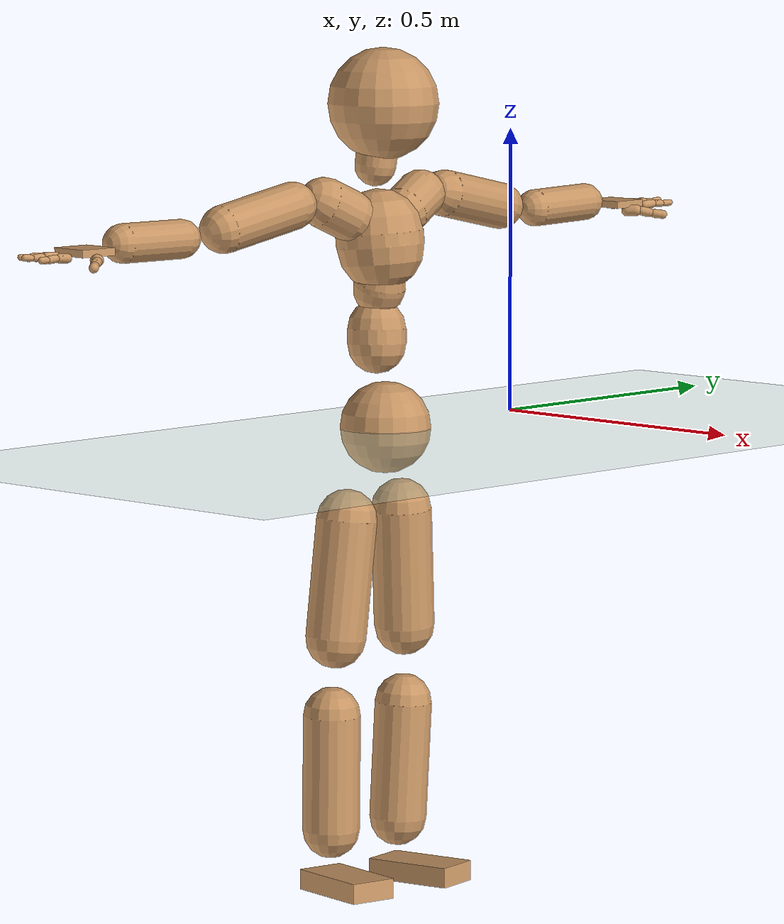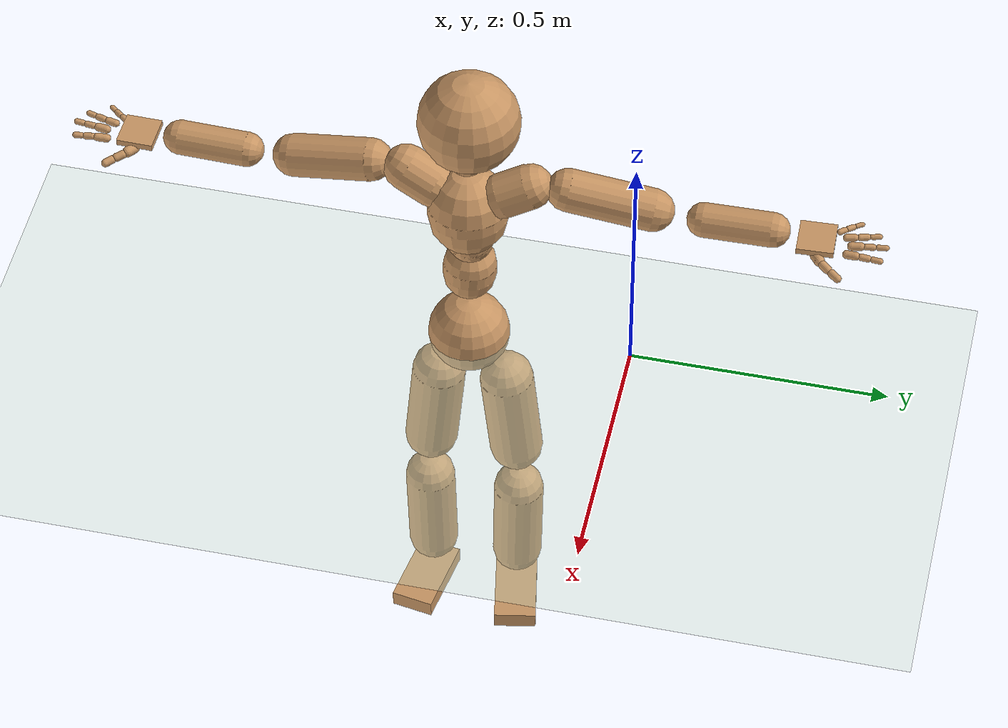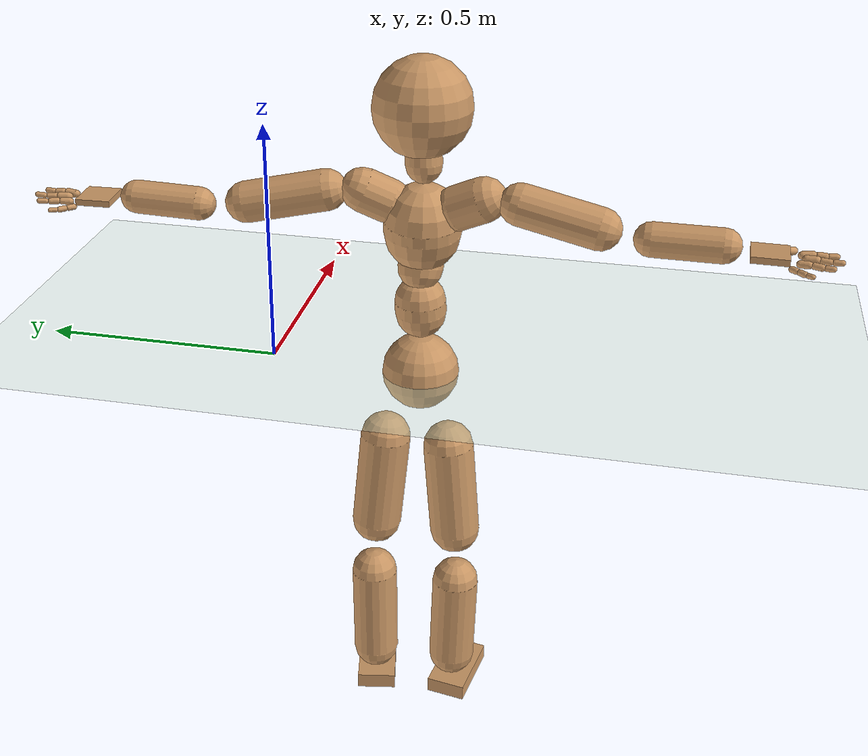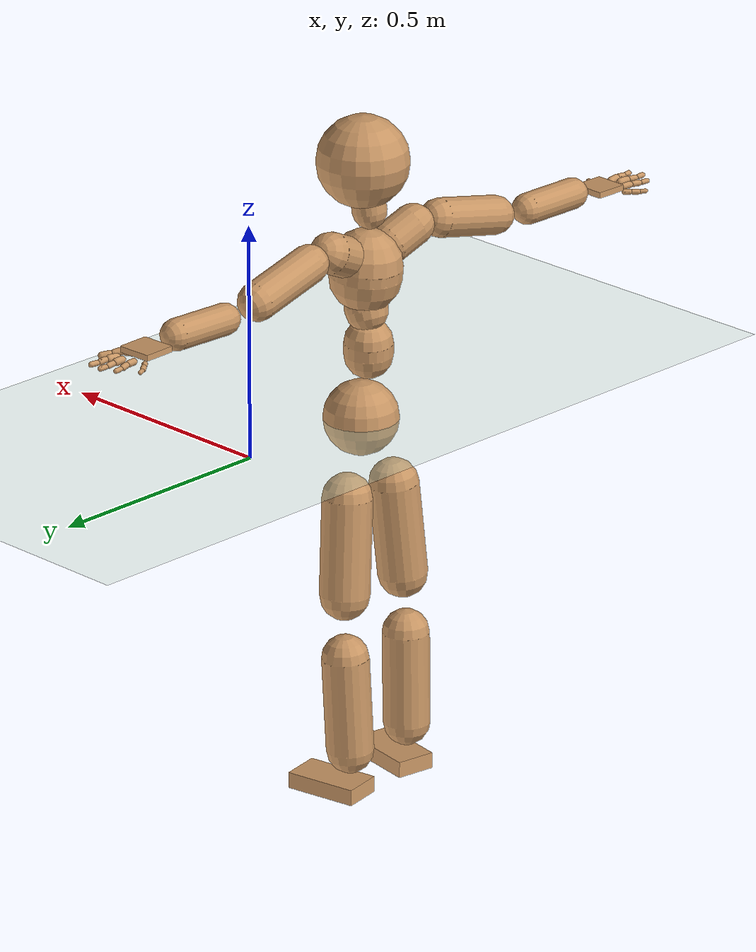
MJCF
<mujoco model="humanoid">
  <compiler coordinate="local" angle="radian"/>
  <default>
    <joint damping="0.0" armature="0.01" stiffness="0.0" limited="true"/>
    <geom conaffinity="1" condim="3" contype="7" margin="0.001" rgba="0.8 0.6 .4 1"/>
  </default>
  <asset>
    <texture type="skybox" builtin="gradient" rgb1=".4 .5 .6" rgb2="0 0 0" width="100" height="100"/>
    <texture builtin="flat" height="1278" mark="cross" markrgb="1 1 1" name="texgeom" random="0.01" rgb1="0.8 0.6 0.4" rgb2="0.8 0.6 0.4" type="cube" width="127"/>
    <texture builtin="checker" height="100" name="texplane" rgb1="0 0 0" rgb2="0.8 0.8 0.8" type="2d" width="100"/>
    <material name="MatPlane" reflectance="0.5" shininess="1" specular="1" texrepeat="60 60" texture="texplane"/>
    <material name="geom" texture="texgeom" texuniform="true"/>
  </asset>
  <worldbody>
    <light cutoff="100" diffuse="1 1 1" dir="-0 0 -1.3" directional="true" exponent="1" pos="0 0 1.3" specular=".1 .1 .1"/>
    <geom conaffinity="1" condim="3" name="floor" pos="0 0 0" rgba="0.8 0.9 0.8 1" size="100 100 .2" type="plane" material="MatPlane"/>
    <body name="Pelvis" pos="0.0004 -0.3167 -0.0005">
      <freejoint name="Pelvis"/>
      <geom type="sphere" contype="1" conaffinity="1" density="500" size="0.0797" pos="0.0000 0.0000 0.0000" name="Pelvis"/>
      <body name="L_Hip" pos="-0.0244 0.0621 -0.0818">
        <joint name="L_Hip_x" type="hinge" pos="0 0 0" axis="1 0 0" stiffness="800" damping="80" armature="0.02" range="-180.0000 180.0000"/>
        <joint name="L_Hip_y" type="hinge" pos="0 0 0" axis="0 1 0" stiffness="800" damping="80" armature="0.02" range="-180.0000 180.0000"/>
        <joint name="L_Hip_z" type="hinge" pos="0 0 0" axis="0 0 1" stiffness="800" damping="80" armature="0.02" range="-180.0000 180.0000"/>
        <geom type="capsule" contype="1" conaffinity="1" density="500" fromto="-0.0034 0.0059 -0.0696 -0.0134 0.0236 -0.2783" size="0.053" name="L_Hip"/>
        <body name="L_Knee" pos="-0.0168 0.0295 -0.3479">
          <joint name="L_Knee_x" type="hinge" pos="0 0 0" axis="1 0 0" stiffness="800" damping="80" armature="0.02" range="-180.0000 180.0000"/>
          <joint name="L_Knee_y" type="hinge" pos="0 0 0" axis="0 1 0" stiffness="800" damping="80" armature="0.02" range="-180.0000 180.0000"/>
          <joint name="L_Knee_z" type="hinge" pos="0 0 0" axis="0 0 1" stiffness="800" damping="80" armature="0.02" range="-180.0000 180.0000"/>
          <geom type="capsule" contype="1" conaffinity="1" density="500" fromto="-0.0028 -0.0017 -0.0689 -0.0114 -0.0067 -0.2756" size="0.0501" name="L_Knee"/>
          <body name="L_Ankle" pos="-0.0142 -0.0084 -0.3444">
            <joint name="L_Ankle_x" type="hinge" pos="0 0 0" axis="1 0 0" stiffness="800" damping="80" armature="0.02" range="-180.0000 180.0000"/>
            <joint name="L_Ankle_y" type="hinge" pos="0 0 0" axis="0 1 0" stiffness="800" damping="80" armature="0.02" range="-180.0000 180.0000"/>
            <joint name="L_Ankle_z" type="hinge" pos="0 0 0" axis="0 0 1" stiffness="800" damping="80" armature="0.02" range="-180.0000 180.0000"/>
            <geom type="box" contype="1" conaffinity="1" density="500" pos="0.0500 0.0093 -0.0200" size="0.0791 0.0425 0.0176" quat="0.9958 0.0000 0.0000 0.0920" name="L_Ankle"/>
            <body name="L_Toe" pos="0.1 0.0186 -0.0401">
              <joint name="L_Toe_x" type="hinge" pos="0 0 0" axis="1 0 0" stiffness="500" damping="50" armature="0.02" range="-180.0000 180.0000"/>
              <joint name="L_Toe_y" type="hinge" pos="0 0 0" axis="0 1 0" stiffness="500" damping="50" armature="0.02" range="-180.0000 180.0000"/>
              <joint name="L_Toe_z" type="hinge" pos="0 0 0" axis="0 0 1" stiffness="500" damping="50" armature="0.02" range="-180.0000 180.0000"/>
              <geom type="box" contype="1" conaffinity="1" density="500" pos="0.0000 0.0000 0.0216" size="0.0009 0.0021 0.001" quat="0.9950 0.0000 0.0000 0.0996" name="L_Toe"/>
            </body>
          </body>
        </body>
      </body>
      <body name="R_Hip" pos="-0.0254 -0.061 -0.0886">
        <joint name="R_Hip_x" type="hinge" pos="0 0 0" axis="1 0 0" stiffness="800" damping="80" armature="0.02" range="-180.0000 180.0000"/>
        <joint name="R_Hip_y" type="hinge" pos="0 0 0" axis="0 1 0" stiffness="800" damping="80" armature="0.02" range="-180.0000 180.0000"/>
        <joint name="R_Hip_z" type="hinge" pos="0 0 0" axis="0 0 1" stiffness="800" damping="80" armature="0.02" range="-180.0000 180.0000"/>
        <geom type="capsule" contype="1" conaffinity="1" density="500" fromto="-0.0023 -0.0066 -0.0686 -0.0094 -0.0266 -0.2744" size="0.053" name="R_Hip"/>
        <body name="R_Knee" pos="-0.0117 -0.0332 -0.3431">
          <joint name="R_Knee_x" type="hinge" pos="0 0 0" axis="1 0 0" stiffness="800" damping="80" armature="0.02" range="-180.0000 180.0000"/>
          <joint name="R_Knee_y" type="hinge" pos="0 0 0" axis="0 1 0" stiffness="800" damping="80" armature="0.02" range="-180.0000 180.0000"/>
          <joint name="R_Knee_z" type="hinge" pos="0 0 0" axis="0 0 1" stiffness="800" damping="80" armature="0.02" range="-180.0000 180.0000"/>
          <geom type="capsule" contype="1" conaffinity="1" density="500" fromto="-0.0020 0.0010 -0.0673 -0.0079 0.0038 -0.2692" size="0.0501" name="R_Knee"/>
          <body name="R_Ankle" pos="-0.0099 0.0048 -0.3365">
            <joint name="R_Ankle_x" type="hinge" pos="0 0 0" axis="1 0 0" stiffness="800" damping="80" armature="0.02" range="-180.0000 180.0000"/>
            <joint name="R_Ankle_y" type="hinge" pos="0 0 0" axis="0 1 0" stiffness="800" damping="80" armature="0.02" range="-180.0000 180.0000"/>
            <joint name="R_Ankle_z" type="hinge" pos="0 0 0" axis="0 0 1" stiffness="800" damping="80" armature="0.02" range="-180.0000 180.0000"/>
            <geom type="box" contype="1" conaffinity="1" density="500" pos="0.0467 -0.0077 -0.0220" size="0.0791 0.0425 0.0176" quat="0.9967 0.0000 0.0000 -0.0812" name="R_Ankle"/>
            <body name="R_Toe" pos="0.0933 -0.0153 -0.0439">
              <joint name="R_Toe_x" type="hinge" pos="0 0 0" axis="1 0 0" stiffness="500" damping="50" armature="0.02" range="-180.0000 180.0000"/>
              <joint name="R_Toe_y" type="hinge" pos="0 0 0" axis="0 1 0" stiffness="500" damping="50" armature="0.02" range="-180.0000 180.0000"/>
              <joint name="R_Toe_z" type="hinge" pos="0 0 0" axis="0 0 1" stiffness="500" damping="50" armature="0.02" range="-180.0000 180.0000"/>
              <geom type="box" contype="1" conaffinity="1" density="500" pos="0.0000 0.0000 0.0235" size="0.0009 0.0021 0.001" quat="0.9976 0.0000 0.0000 -0.0693" name="R_Toe"/>
            </body>
          </body>
        </body>
      </body>
      <body name="Torso" pos="-0.0165 -0.0042 0.0919">
        <joint name="Torso_x" type="hinge" pos="0 0 0" axis="1 0 0" stiffness="1000" damping="100" armature="0.02" range="-180.0000 180.0000"/>
        <joint name="Torso_y" type="hinge" pos="0 0 0" axis="0 1 0" stiffness="1000" damping="100" armature="0.02" range="-180.0000 180.0000"/>
        <joint name="Torso_z" type="hinge" pos="0 0 0" axis="0 0 1" stiffness="1000" damping="100" armature="0.02" range="-180.0000 180.0000"/>
        <geom type="capsule" contype="1" conaffinity="1" density="500" fromto="-0.0035 0.0030 0.0775 -0.0023 0.0020 0.0516" size="0.0516" name="Torso"/>
        <body name="Spine" pos="-0.0058 0.005 0.1291">
          <joint name="Spine_x" type="hinge" pos="0 0 0" axis="1 0 0" stiffness="1000" damping="100" armature="0.02" range="-180.0000 180.0000"/>
          <joint name="Spine_y" type="hinge" pos="0 0 0" axis="0 1 0" stiffness="1000" damping="100" armature="0.02" range="-180.0000 180.0000"/>
          <joint name="Spine_z" type="hinge" pos="0 0 0" axis="0 0 1" stiffness="1000" damping="100" armature="0.02" range="-180.0000 180.0000"/>
          <geom type="capsule" contype="1" conaffinity="1" density="500" fromto="0.0096 -0.0009 0.0273 0.0064 -0.0006 0.0182" size="0.0454" name="Spine"/>
          <body name="Chest" pos="0.016 -0.0014 0.0455">
            <joint name="Chest_x" type="hinge" pos="0 0 0" axis="1 0 0" stiffness="1000" damping="100" armature="0.02" range="-180.0000 180.0000"/>
            <joint name="Chest_y" type="hinge" pos="0 0 0" axis="0 1 0" stiffness="1000" damping="100" armature="0.02" range="-180.0000 180.0000"/>
            <joint name="Chest_z" type="hinge" pos="0 0 0" axis="0 0 1" stiffness="1000" damping="100" armature="0.02" range="-180.0000 180.0000"/>
            <geom type="capsule" contype="1" conaffinity="1" density="500" fromto="-0.0058 -0.0017 0.0697 -0.0038 -0.0011 0.0465" size="0.0768" name="Chest"/>
            <body name="Neck" pos="-0.0163 -0.0055 0.1591">
              <joint name="Neck_x" type="hinge" pos="0 0 0" axis="1 0 0" stiffness="500" damping="50" armature="0.02" range="-180.0000 180.0000"/>
              <joint name="Neck_y" type="hinge" pos="0 0 0" axis="0 1 0" stiffness="500" damping="50" armature="0.02" range="-180.0000 180.0000"/>
              <joint name="Neck_z" type="hinge" pos="0 0 0" axis="0 0 1" stiffness="500" damping="50" armature="0.02" range="-180.0000 180.0000"/>
              <geom type="capsule" contype="1" conaffinity="1" density="500" fromto="0.0031 0.0016 0.0267 0.0125 0.0066 0.1066" size="0.0361" name="Neck"/>
              <body name="Head" pos="0.0156 0.0082 0.1333">
                <joint name="Head_x" type="hinge" pos="0 0 0" axis="1 0 0" stiffness="500" damping="50" armature="0.02" range="-180.0000 180.0000"/>
                <joint name="Head_y" type="hinge" pos="0 0 0" axis="0 1 0" stiffness="500" damping="50" armature="0.02" range="-180.0000 180.0000"/>
                <joint name="Head_z" type="hinge" pos="0 0 0" axis="0 0 1" stiffness="500" damping="50" armature="0.02" range="-180.0000 180.0000"/>
                <geom type="sphere" contype="1" conaffinity="1" density="500" size="0.0968" pos="0.0000 0.0000 0.0000" name="Head"/>
              </body>
            </body>
            <body name="L_Thorax" pos="-0.0039 0.0453 0.0962">
              <joint name="L_Thorax_x" type="hinge" pos="0 0 0" axis="1 0 0" stiffness="500" damping="50" armature="0.02" range="-180.0000 180.0000"/>
              <joint name="L_Thorax_y" type="hinge" pos="0 0 0" axis="0 1 0" stiffness="500" damping="50" armature="0.02" range="-180.0000 180.0000"/>
              <joint name="L_Thorax_z" type="hinge" pos="0 0 0" axis="0 0 1" stiffness="500" damping="50" armature="0.02" range="-180.0000 180.0000"/>
              <geom type="capsule" contype="1" conaffinity="1" density="500" fromto="-0.0039 0.0172 0.0081 -0.0156 0.0687 0.0325" size="0.0434" name="L_Thorax"/>
              <body name="L_Shoulder" pos="-0.0195 0.0858 0.0406">
                <joint name="L_Shoulder_x" type="hinge" pos="0 0 0" axis="1 0 0" stiffness="500" damping="50" armature="0.02" range="-180.0000 180.0000"/>
                <joint name="L_Shoulder_y" type="hinge" pos="0 0 0" axis="0 1 0" stiffness="500" damping="50" armature="0.02" range="-180.0000 180.0000"/>
                <joint name="L_Shoulder_z" type="hinge" pos="0 0 0" axis="0 0 1" stiffness="500" damping="50" armature="0.02" range="-180.0000 180.0000"/>
                <geom type="capsule" contype="1" conaffinity="1" density="500" fromto="-0.0048 0.0529 -0.0110 -0.0194 0.2115 -0.0439" size="0.0411" name="L_Shoulder"/>
                <body name="L_Elbow" pos="-0.0242 0.2643 -0.0549">
                  <joint name="L_Elbow_x" type="hinge" pos="0 0 0" axis="1 0 0" stiffness="500" damping="50" armature="0.02" range="-720.0000 720.0000"/>
                  <joint name="L_Elbow_y" type="hinge" pos="0 0 0" axis="0 1 0" stiffness="500" damping="50" armature="0.02" range="-720.0000 720.0000"/>
                  <joint name="L_Elbow_z" type="hinge" pos="0 0 0" axis="0 0 1" stiffness="500" damping="50" armature="0.02" range="-720.0000 720.0000"/>
                  <geom type="capsule" contype="1" conaffinity="1" density="500" fromto="0.0004 0.0432 0.0011 0.0014 0.1730 0.0043" size="0.0332" name="L_Elbow"/>
                  <body name="L_Wrist" pos="0.0018 0.2162 0.0053">
                    <joint name="L_Wrist_x" type="hinge" pos="0 0 0" axis="1 0 0" stiffness="300" damping="30" armature="0.02" range="-180.0000 180.0000"/>
                    <joint name="L_Wrist_y" type="hinge" pos="0 0 0" axis="0 1 0" stiffness="300" damping="30" armature="0.02" range="-180.0000 180.0000"/>
                    <joint name="L_Wrist_z" type="hinge" pos="0 0 0" axis="0 0 1" stiffness="300" damping="30" armature="0.02" range="-180.0000 180.0000"/>
                    <geom type="box" contype="1" conaffinity="1" density="500" pos="-0.0015 0.0393 -0.0082" size="0.0349 0.0373 0.0063" quat="0.7207 0.0000 0.0000 -0.6933" name="L_Wrist"/>
                    <body name="L_Index1" pos="0.0192 0.0926 -0.015">
                      <joint name="L_Index1_x" type="hinge" pos="0 0 0" axis="1 0 0" stiffness="100" damping="10" armature="0.02" range="-180.0000 180.0000"/>
                      <joint name="L_Index1_y" type="hinge" pos="0 0 0" axis="0 1 0" stiffness="100" damping="10" armature="0.02" range="-180.0000 180.0000"/>
                      <joint name="L_Index1_z" type="hinge" pos="0 0 0" axis="0 0 1" stiffness="100" damping="10" armature="0.02" range="-180.0000 180.0000"/>
                      <geom type="capsule" contype="1" conaffinity="1" density="500" fromto="0.0006 0.0059 0.0004 0.0023 0.0238 0.0018" size="0.008" name="L_Index1"/>
                      <body name="L_Index2" pos="0.0028 0.0297 0.0022">
                        <joint name="L_Index2_x" type="hinge" pos="0 0 0" axis="1 0 0" stiffness="100" damping="10" armature="0.02" range="-180.0000 180.0000"/>
                        <joint name="L_Index2_y" type="hinge" pos="0 0 0" axis="0 1 0" stiffness="100" damping="10" armature="0.02" range="-180.0000 180.0000"/>
                        <joint name="L_Index2_z" type="hinge" pos="0 0 0" axis="0 0 1" stiffness="100" damping="10" armature="0.02" range="-180.0000 180.0000"/>
                        <geom type="capsule" contype="1" conaffinity="1" density="500" fromto="0.0001 0.0042 -0.0003 0.0004 0.0169 -0.0012" size="0.0067" name="L_Index2"/>
                        <body name="L_Index3" pos="0.0005 0.0212 -0.0014">
                          <joint name="L_Index3_x" type="hinge" pos="0 0 0" axis="1 0 0" stiffness="100" damping="10" armature="0.02" range="-180.0000 180.0000"/>
                          <joint name="L_Index3_y" type="hinge" pos="0 0 0" axis="0 1 0" stiffness="100" damping="10" armature="0.02" range="-180.0000 180.0000"/>
                          <joint name="L_Index3_z" type="hinge" pos="0 0 0" axis="0 0 1" stiffness="100" damping="10" armature="0.02" range="-180.0000 180.0000"/>
                          <geom type="capsule" contype="1" conaffinity="1" density="500" fromto="0.0005 0.0046 0.0001 0.0020 0.0185 0.0004" size="0.0057" name="L_Index3"/>
                        </body>
                      </body>
                    </body>
                    <body name="L_Middle1" pos="-0.0007 0.0988 -0.013">
                      <joint name="L_Middle1_x" type="hinge" pos="0 0 0" axis="1 0 0" stiffness="100" damping="10" armature="0.02" range="-180.0000 180.0000"/>
                      <joint name="L_Middle1_y" type="hinge" pos="0 0 0" axis="0 1 0" stiffness="100" damping="10" armature="0.02" range="-180.0000 180.0000"/>
                      <joint name="L_Middle1_z" type="hinge" pos="0 0 0" axis="0 0 1" stiffness="100" damping="10" armature="0.02" range="-180.0000 180.0000"/>
                      <geom type="capsule" contype="1" conaffinity="1" density="500" fromto="-0.0007 0.0057 0.0002 -0.0027 0.0226 0.0008" size="0.0081" name="L_Middle1"/>
                      <body name="L_Middle2" pos="-0.0034 0.0283 0.001">
                        <joint name="L_Middle2_x" type="hinge" pos="0 0 0" axis="1 0 0" stiffness="100" damping="10" armature="0.02" range="-180.0000 180.0000"/>
                        <joint name="L_Middle2_y" type="hinge" pos="0 0 0" axis="0 1 0" stiffness="100" damping="10" armature="0.02" range="-180.0000 180.0000"/>
                        <joint name="L_Middle2_z" type="hinge" pos="0 0 0" axis="0 0 1" stiffness="100" damping="10" armature="0.02" range="-180.0000 180.0000"/>
                        <geom type="capsule" contype="1" conaffinity="1" density="500" fromto="-0.0007 0.0044 -0.0001 -0.0027 0.0177 -0.0004" size="0.0062" name="L_Middle2"/>
                        <body name="L_Middle3" pos="-0.0034 0.0221 -0.0005">
                          <joint name="L_Middle3_x" type="hinge" pos="0 0 0" axis="1 0 0" stiffness="100" damping="10" armature="0.02" range="-180.0000 180.0000"/>
                          <joint name="L_Middle3_y" type="hinge" pos="0 0 0" axis="0 1 0" stiffness="100" damping="10" armature="0.02" range="-180.0000 180.0000"/>
                          <joint name="L_Middle3_z" type="hinge" pos="0 0 0" axis="0 0 1" stiffness="100" damping="10" armature="0.02" range="-180.0000 180.0000"/>
                          <geom type="capsule" contype="1" conaffinity="1" density="500" fromto="-0.0003 0.0048 0.0003 -0.0011 0.0193 0.0012" size="0.0056" name="L_Middle3"/>
                        </body>
                      </body>
                    </body>
                    <body name="L_Pinky1" pos="-0.0361 0.0752 -0.0186">
                      <joint name="L_Pinky1_x" type="hinge" pos="0 0 0" axis="1 0 0" stiffness="100" damping="10" armature="0.02" range="-180.0000 180.0000"/>
                      <joint name="L_Pinky1_y" type="hinge" pos="0 0 0" axis="0 1 0" stiffness="100" damping="10" armature="0.02" range="-180.0000 180.0000"/>
                      <joint name="L_Pinky1_z" type="hinge" pos="0 0 0" axis="0 0 1" stiffness="100" damping="10" armature="0.02" range="-180.0000 180.0000"/>
                      <geom type="capsule" contype="1" conaffinity="1" density="500" fromto="-0.0023 0.0027 -0.0000 -0.0091 0.0108 -0.0002" size="0.0059" name="L_Pinky1"/>
                      <body name="L_Pinky2" pos="-0.0113 0.0136 -0.0002">
                        <joint name="L_Pinky2_x" type="hinge" pos="0 0 0" axis="1 0 0" stiffness="100" damping="10" armature="0.02" range="-180.0000 180.0000"/>
                        <joint name="L_Pinky2_y" type="hinge" pos="0 0 0" axis="0 1 0" stiffness="100" damping="10" armature="0.02" range="-180.0000 180.0000"/>
                        <joint name="L_Pinky2_z" type="hinge" pos="0 0 0" axis="0 0 1" stiffness="100" damping="10" armature="0.02" range="-180.0000 180.0000"/>
                        <geom type="capsule" contype="1" conaffinity="1" density="500" fromto="-0.0022 0.0028 -0.0001 -0.0090 0.0112 -0.0005" size="0.0058" name="L_Pinky2"/>
                        <body name="L_Pinky3" pos="-0.0112 0.014 -0.0006">
                          <joint name="L_Pinky3_x" type="hinge" pos="0 0 0" axis="1 0 0" stiffness="100" damping="10" armature="0.02" range="-180.0000 180.0000"/>
                          <joint name="L_Pinky3_y" type="hinge" pos="0 0 0" axis="0 1 0" stiffness="100" damping="10" armature="0.02" range="-180.0000 180.0000"/>
                          <joint name="L_Pinky3_z" type="hinge" pos="0 0 0" axis="0 0 1" stiffness="100" damping="10" armature="0.02" range="-180.0000 180.0000"/>
                          <geom type="capsule" contype="1" conaffinity="1" density="500" fromto="-0.0018 0.0032 0.0003 -0.0074 0.0128 0.0011" size="0.0046" name="L_Pinky3"/>
                        </body>
                      </body>
                    </body>
                    <body name="L_Ring1" pos="-0.0212 0.0874 -0.0147">
                      <joint name="L_Ring1_x" type="hinge" pos="0 0 0" axis="1 0 0" stiffness="100" damping="10" armature="0.02" range="-180.0000 180.0000"/>
                      <joint name="L_Ring1_y" type="hinge" pos="0 0 0" axis="0 1 0" stiffness="100" damping="10" armature="0.02" range="-180.0000 180.0000"/>
                      <joint name="L_Ring1_z" type="hinge" pos="0 0 0" axis="0 0 1" stiffness="100" damping="10" armature="0.02" range="-180.0000 180.0000"/>
                      <geom type="capsule" contype="1" conaffinity="1" density="500" fromto="-0.0010 0.0051 0.0003 -0.0039 0.0203 0.0011" size="0.0071" name="L_Ring1"/>
                      <body name="L_Ring2" pos="-0.0049 0.0254 0.0014">
                        <joint name="L_Ring2_x" type="hinge" pos="0 0 0" axis="1 0 0" stiffness="100" damping="10" armature="0.02" range="-180.0000 180.0000"/>
                        <joint name="L_Ring2_y" type="hinge" pos="0 0 0" axis="0 1 0" stiffness="100" damping="10" armature="0.02" range="-180.0000 180.0000"/>
                        <joint name="L_Ring2_z" type="hinge" pos="0 0 0" axis="0 0 1" stiffness="100" damping="10" armature="0.02" range="-180.0000 180.0000"/>
                        <geom type="capsule" contype="1" conaffinity="1" density="500" fromto="-0.0013 0.0042 -0.0001 -0.0053 0.0169 -0.0006" size="0.0066" name="L_Ring2"/>
                        <body name="L_Ring3" pos="-0.0066 0.0211 -0.0007">
                          <joint name="L_Ring3_x" type="hinge" pos="0 0 0" axis="1 0 0" stiffness="100" damping="10" armature="0.02" range="-180.0000 180.0000"/>
                          <joint name="L_Ring3_y" type="hinge" pos="0 0 0" axis="0 1 0" stiffness="100" damping="10" armature="0.02" range="-180.0000 180.0000"/>
                          <joint name="L_Ring3_z" type="hinge" pos="0 0 0" axis="0 0 1" stiffness="100" damping="10" armature="0.02" range="-180.0000 180.0000"/>
                          <geom type="capsule" contype="1" conaffinity="1" density="500" fromto="-0.0009 0.0046 0.0003 -0.0037 0.0185 0.0010" size="0.0053" name="L_Ring3"/>
                        </body>
                      </body>
                    </body>
                    <body name="L_Thumb1" pos="0.0236 0.0387 -0.0205">
                      <joint name="L_Thumb1_x" type="hinge" pos="0 0 0" axis="1 0 0" stiffness="100" damping="10" armature="0.02" range="-180.0000 180.0000"/>
                      <joint name="L_Thumb1_y" type="hinge" pos="0 0 0" axis="0 1 0" stiffness="100" damping="10" armature="0.02" range="-180.0000 180.0000"/>
                      <joint name="L_Thumb1_z" type="hinge" pos="0 0 0" axis="0 0 1" stiffness="100" damping="10" armature="0.02" range="-180.0000 180.0000"/>
                      <geom type="capsule" contype="1" conaffinity="1" density="500" fromto="0.0044 0.0032 0.0001 0.0175 0.0129 0.0004" size="0.0105" name="L_Thumb1"/>
                      <body name="L_Thumb2" pos="0.0219 0.0161 0.0005">
                        <joint name="L_Thumb2_x" type="hinge" pos="0 0 0" axis="1 0 0" stiffness="100" damping="10" armature="0.02" range="-180.0000 180.0000"/>
                        <joint name="L_Thumb2_y" type="hinge" pos="0 0 0" axis="0 1 0" stiffness="100" damping="10" armature="0.02" range="-180.0000 180.0000"/>
                        <joint name="L_Thumb2_z" type="hinge" pos="0 0 0" axis="0 0 1" stiffness="100" damping="10" armature="0.02" range="-180.0000 180.0000"/>
                        <geom type="capsule" contype="1" conaffinity="1" density="500" fromto="0.0027 0.0038 -0.0011 0.0107 0.0151 -0.0043" size="0.0083" name="L_Thumb2"/>
                        <body name="L_Thumb3" pos="0.0133 0.0189 -0.0054">
                          <joint name="L_Thumb3_x" type="hinge" pos="0 0 0" axis="1 0 0" stiffness="100" damping="10" armature="0.02" range="-180.0000 180.0000"/>
                          <joint name="L_Thumb3_y" type="hinge" pos="0 0 0" axis="0 1 0" stiffness="100" damping="10" armature="0.02" range="-180.0000 180.0000"/>
                          <joint name="L_Thumb3_z" type="hinge" pos="0 0 0" axis="0 0 1" stiffness="100" damping="10" armature="0.02" range="-180.0000 180.0000"/>
                          <geom type="capsule" contype="1" conaffinity="1" density="500" fromto="0.0031 0.0042 -0.0007 0.0123 0.0167 -0.0027" size="0.0078" name="L_Thumb3"/>
                        </body>
                      </body>
                    </body>
                  </body>
                </body>
              </body>
            </body>
            <body name="R_Thorax" pos="-0.0086 -0.0484 0.0934">
              <joint name="R_Thorax_x" type="hinge" pos="0 0 0" axis="1 0 0" stiffness="500" damping="50" armature="0.02" range="-180.0000 180.0000"/>
              <joint name="R_Thorax_y" type="hinge" pos="0 0 0" axis="0 1 0" stiffness="500" damping="50" armature="0.02" range="-180.0000 180.0000"/>
              <joint name="R_Thorax_z" type="hinge" pos="0 0 0" axis="0 0 1" stiffness="500" damping="50" armature="0.02" range="-180.0000 180.0000"/>
              <geom type="capsule" contype="1" conaffinity="1" density="500" fromto="-0.0029 -0.0185 0.0087 -0.0117 -0.0739 0.0348" size="0.0442" name="R_Thorax"/>
              <body name="R_Shoulder" pos="-0.0147 -0.0924 0.0435">
                <joint name="R_Shoulder_x" type="hinge" pos="0 0 0" axis="1 0 0" stiffness="500" damping="50" armature="0.02" range="-180.0000 180.0000"/>
                <joint name="R_Shoulder_y" type="hinge" pos="0 0 0" axis="0 1 0" stiffness="500" damping="50" armature="0.02" range="-180.0000 180.0000"/>
                <joint name="R_Shoulder_z" type="hinge" pos="0 0 0" axis="0 0 1" stiffness="500" damping="50" armature="0.02" range="-180.0000 180.0000"/>
                <geom type="capsule" contype="1" conaffinity="1" density="500" fromto="-0.0035 -0.0508 -0.0103 -0.0142 -0.2031 -0.0412" size="0.0414" name="R_Shoulder"/>
                <body name="R_Elbow" pos="-0.0177 -0.2539 -0.0515">
                  <joint name="R_Elbow_x" type="hinge" pos="0 0 0" axis="1 0 0" stiffness="500" damping="50" armature="0.02" range="-720.0000 720.0000"/>
                  <joint name="R_Elbow_y" type="hinge" pos="0 0 0" axis="0 1 0" stiffness="500" damping="50" armature="0.02" range="-720.0000 720.0000"/>
                  <joint name="R_Elbow_z" type="hinge" pos="0 0 0" axis="0 0 1" stiffness="500" damping="50" armature="0.02" range="-720.0000 720.0000"/>
                  <geom type="capsule" contype="1" conaffinity="1" density="500" fromto="-0.0012 -0.0435 0.0002 -0.0048 -0.1739 0.0010" size="0.0334" name="R_Elbow"/>
                  <body name="R_Wrist" pos="-0.006 -0.2174 0.0012">
                    <joint name="R_Wrist_x" type="hinge" pos="0 0 0" axis="1 0 0" stiffness="300" damping="30" armature="0.02" range="-180.0000 180.0000"/>
                    <joint name="R_Wrist_y" type="hinge" pos="0 0 0" axis="0 1 0" stiffness="300" damping="30" armature="0.02" range="-180.0000 180.0000"/>
                    <joint name="R_Wrist_z" type="hinge" pos="0 0 0" axis="0 0 1" stiffness="300" damping="30" armature="0.02" range="-180.0000 180.0000"/>
                    <geom type="box" contype="1" conaffinity="1" density="500" pos="-0.0009 -0.0388 -0.0078" size="0.0349 0.0352 0.0065" quat="0.7156 0.0000 0.0000 0.6985" name="R_Wrist"/>
                    <body name="R_Index1" pos="0.0204 -0.0916 -0.0143">
                      <joint name="R_Index1_x" type="hinge" pos="0 0 0" axis="1 0 0" stiffness="100" damping="10" armature="0.02" range="-180.0000 180.0000"/>
                      <joint name="R_Index1_y" type="hinge" pos="0 0 0" axis="0 1 0" stiffness="100" damping="10" armature="0.02" range="-180.0000 180.0000"/>
                      <joint name="R_Index1_z" type="hinge" pos="0 0 0" axis="0 0 1" stiffness="100" damping="10" armature="0.02" range="-180.0000 180.0000"/>
                      <geom type="capsule" contype="1" conaffinity="1" density="500" fromto="0.0006 -0.0059 0.0004 0.0023 -0.0238 0.0018" size="0.008" name="R_Index1"/>
                      <body name="R_Index2" pos="0.0028 -0.0297 0.0022">
                        <joint name="R_Index2_x" type="hinge" pos="0 0 0" axis="1 0 0" stiffness="100" damping="10" armature="0.02" range="-180.0000 180.0000"/>
                        <joint name="R_Index2_y" type="hinge" pos="0 0 0" axis="0 1 0" stiffness="100" damping="10" armature="0.02" range="-180.0000 180.0000"/>
                        <joint name="R_Index2_z" type="hinge" pos="0 0 0" axis="0 0 1" stiffness="100" damping="10" armature="0.02" range="-180.0000 180.0000"/>
                        <geom type="capsule" contype="1" conaffinity="1" density="500" fromto="0.0001 -0.0042 -0.0003 0.0004 -0.0169 -0.0012" size="0.0067" name="R_Index2"/>
                        <body name="R_Index3" pos="0.0005 -0.0212 -0.0014">
                          <joint name="R_Index3_x" type="hinge" pos="0 0 0" axis="1 0 0" stiffness="100" damping="10" armature="0.02" range="-180.0000 180.0000"/>
                          <joint name="R_Index3_y" type="hinge" pos="0 0 0" axis="0 1 0" stiffness="100" damping="10" armature="0.02" range="-180.0000 180.0000"/>
                          <joint name="R_Index3_z" type="hinge" pos="0 0 0" axis="0 0 1" stiffness="100" damping="10" armature="0.02" range="-180.0000 180.0000"/>
                          <geom type="capsule" contype="1" conaffinity="1" density="500" fromto="0.0005 -0.0038 0.0001 0.0020 -0.0153 0.0004" size="0.006" name="R_Index3"/>
                        </body>
                      </body>
                    </body>
                    <body name="R_Middle1" pos="0.0004 -0.0978 -0.0123">
                      <joint name="R_Middle1_x" type="hinge" pos="0 0 0" axis="1 0 0" stiffness="100" damping="10" armature="0.02" range="-180.0000 180.0000"/>
                      <joint name="R_Middle1_y" type="hinge" pos="0 0 0" axis="0 1 0" stiffness="100" damping="10" armature="0.02" range="-180.0000 180.0000"/>
                      <joint name="R_Middle1_z" type="hinge" pos="0 0 0" axis="0 0 1" stiffness="100" damping="10" armature="0.02" range="-180.0000 180.0000"/>
                      <geom type="capsule" contype="1" conaffinity="1" density="500" fromto="-0.0007 -0.0057 0.0002 -0.0027 -0.0226 0.0008" size="0.0081" name="R_Middle1"/>
                      <body name="R_Middle2" pos="-0.0034 -0.0283 0.001">
                        <joint name="R_Middle2_x" type="hinge" pos="0 0 0" axis="1 0 0" stiffness="100" damping="10" armature="0.02" range="-180.0000 180.0000"/>
                        <joint name="R_Middle2_y" type="hinge" pos="0 0 0" axis="0 1 0" stiffness="100" damping="10" armature="0.02" range="-180.0000 180.0000"/>
                        <joint name="R_Middle2_z" type="hinge" pos="0 0 0" axis="0 0 1" stiffness="100" damping="10" armature="0.02" range="-180.0000 180.0000"/>
                        <geom type="capsule" contype="1" conaffinity="1" density="500" fromto="-0.0007 -0.0044 -0.0001 -0.0027 -0.0177 -0.0004" size="0.0062" name="R_Middle2"/>
                        <body name="R_Middle3" pos="-0.0034 -0.0221 -0.0005">
                          <joint name="R_Middle3_x" type="hinge" pos="0 0 0" axis="1 0 0" stiffness="100" damping="10" armature="0.02" range="-180.0000 180.0000"/>
                          <joint name="R_Middle3_y" type="hinge" pos="0 0 0" axis="0 1 0" stiffness="100" damping="10" armature="0.02" range="-180.0000 180.0000"/>
                          <joint name="R_Middle3_z" type="hinge" pos="0 0 0" axis="0 0 1" stiffness="100" damping="10" armature="0.02" range="-180.0000 180.0000"/>
                          <geom type="capsule" contype="1" conaffinity="1" density="500" fromto="-0.0003 -0.0040 0.0003 -0.0011 -0.0161 0.0012" size="0.0058" name="R_Middle3"/>
                        </body>
                      </body>
                    </body>
                    <body name="R_Pinky1" pos="-0.035 -0.0742 -0.0179">
                      <joint name="R_Pinky1_x" type="hinge" pos="0 0 0" axis="1 0 0" stiffness="100" damping="10" armature="0.02" range="-180.0000 180.0000"/>
                      <joint name="R_Pinky1_y" type="hinge" pos="0 0 0" axis="0 1 0" stiffness="100" damping="10" armature="0.02" range="-180.0000 180.0000"/>
                      <joint name="R_Pinky1_z" type="hinge" pos="0 0 0" axis="0 0 1" stiffness="100" damping="10" armature="0.02" range="-180.0000 180.0000"/>
                      <geom type="capsule" contype="1" conaffinity="1" density="500" fromto="-0.0023 -0.0027 -0.0000 -0.0091 -0.0108 -0.0002" size="0.0059" name="R_Pinky1"/>
                      <body name="R_Pinky2" pos="-0.0113 -0.0135 -0.0002">
                        <joint name="R_Pinky2_x" type="hinge" pos="0 0 0" axis="1 0 0" stiffness="100" damping="10" armature="0.02" range="-180.0000 180.0000"/>
                        <joint name="R_Pinky2_y" type="hinge" pos="0 0 0" axis="0 1 0" stiffness="100" damping="10" armature="0.02" range="-180.0000 180.0000"/>
                        <joint name="R_Pinky2_z" type="hinge" pos="0 0 0" axis="0 0 1" stiffness="100" damping="10" armature="0.02" range="-180.0000 180.0000"/>
                        <geom type="capsule" contype="1" conaffinity="1" density="500" fromto="-0.0022 -0.0028 -0.0001 -0.0090 -0.0112 -0.0005" size="0.0058" name="R_Pinky2"/>
                        <body name="R_Pinky3" pos="-0.0112 -0.014 -0.0006">
                          <joint name="R_Pinky3_x" type="hinge" pos="0 0 0" axis="1 0 0" stiffness="100" damping="10" armature="0.02" range="-180.0000 180.0000"/>
                          <joint name="R_Pinky3_y" type="hinge" pos="0 0 0" axis="0 1 0" stiffness="100" damping="10" armature="0.02" range="-180.0000 180.0000"/>
                          <joint name="R_Pinky3_z" type="hinge" pos="0 0 0" axis="0 0 1" stiffness="100" damping="10" armature="0.02" range="-180.0000 180.0000"/>
                          <geom type="capsule" contype="1" conaffinity="1" density="500" fromto="-0.0018 -0.0024 0.0003 -0.0074 -0.0096 0.0011" size="0.0049" name="R_Pinky3"/>
                        </body>
                      </body>
                    </body>
                    <body name="R_Ring1" pos="-0.02 -0.0864 -0.014">
                      <joint name="R_Ring1_x" type="hinge" pos="0 0 0" axis="1 0 0" stiffness="100" damping="10" armature="0.02" range="-180.0000 180.0000"/>
                      <joint name="R_Ring1_y" type="hinge" pos="0 0 0" axis="0 1 0" stiffness="100" damping="10" armature="0.02" range="-180.0000 180.0000"/>
                      <joint name="R_Ring1_z" type="hinge" pos="0 0 0" axis="0 0 1" stiffness="100" damping="10" armature="0.02" range="-180.0000 180.0000"/>
                      <geom type="capsule" contype="1" conaffinity="1" density="500" fromto="-0.0010 -0.0051 0.0003 -0.0039 -0.0203 0.0011" size="0.0071" name="R_Ring1"/>
                      <body name="R_Ring2" pos="-0.0049 -0.0254 0.0014">
                        <joint name="R_Ring2_x" type="hinge" pos="0 0 0" axis="1 0 0" stiffness="100" damping="10" armature="0.02" range="-180.0000 180.0000"/>
                        <joint name="R_Ring2_y" type="hinge" pos="0 0 0" axis="0 1 0" stiffness="100" damping="10" armature="0.02" range="-180.0000 180.0000"/>
                        <joint name="R_Ring2_z" type="hinge" pos="0 0 0" axis="0 0 1" stiffness="100" damping="10" armature="0.02" range="-180.0000 180.0000"/>
                        <geom type="capsule" contype="1" conaffinity="1" density="500" fromto="-0.0013 -0.0042 -0.0001 -0.0053 -0.0169 -0.0006" size="0.0066" name="R_Ring2"/>
                        <body name="R_Ring3" pos="-0.0066 -0.0211 -0.0007">
                          <joint name="R_Ring3_x" type="hinge" pos="0 0 0" axis="1 0 0" stiffness="100" damping="10" armature="0.02" range="-180.0000 180.0000"/>
                          <joint name="R_Ring3_y" type="hinge" pos="0 0 0" axis="0 1 0" stiffness="100" damping="10" armature="0.02" range="-180.0000 180.0000"/>
                          <joint name="R_Ring3_z" type="hinge" pos="0 0 0" axis="0 0 1" stiffness="100" damping="10" armature="0.02" range="-180.0000 180.0000"/>
                          <geom type="capsule" contype="1" conaffinity="1" density="500" fromto="-0.0009 -0.0038 0.0003 -0.0037 -0.0153 0.0010" size="0.0055" name="R_Ring3"/>
                        </body>
                      </body>
                    </body>
                    <body name="R_Thumb1" pos="0.0248 -0.0377 -0.0198">
                      <joint name="R_Thumb1_x" type="hinge" pos="0 0 0" axis="1 0 0" stiffness="100" damping="10" armature="0.02" range="-180.0000 180.0000"/>
                      <joint name="R_Thumb1_y" type="hinge" pos="0 0 0" axis="0 1 0" stiffness="100" damping="10" armature="0.02" range="-180.0000 180.0000"/>
                      <joint name="R_Thumb1_z" type="hinge" pos="0 0 0" axis="0 0 1" stiffness="100" damping="10" armature="0.02" range="-180.0000 180.0000"/>
                      <geom type="capsule" contype="1" conaffinity="1" density="500" fromto="0.0044 -0.0032 0.0001 0.0175 -0.0129 0.0004" size="0.0105" name="R_Thumb1"/>
                      <body name="R_Thumb2" pos="0.0219 -0.0161 0.0005">
                        <joint name="R_Thumb2_x" type="hinge" pos="0 0 0" axis="1 0 0" stiffness="100" damping="10" armature="0.02" range="-180.0000 180.0000"/>
                        <joint name="R_Thumb2_y" type="hinge" pos="0 0 0" axis="0 1 0" stiffness="100" damping="10" armature="0.02" range="-180.0000 180.0000"/>
                        <joint name="R_Thumb2_z" type="hinge" pos="0 0 0" axis="0 0 1" stiffness="100" damping="10" armature="0.02" range="-180.0000 180.0000"/>
                        <geom type="capsule" contype="1" conaffinity="1" density="500" fromto="0.0027 -0.0038 -0.0011 0.0107 -0.0151 -0.0043" size="0.0083" name="R_Thumb2"/>
                        <body name="R_Thumb3" pos="0.0133 -0.0189 -0.0054">
                          <joint name="R_Thumb3_x" type="hinge" pos="0 0 0" axis="1 0 0" stiffness="100" damping="10" armature="0.02" range="-180.0000 180.0000"/>
                          <joint name="R_Thumb3_y" type="hinge" pos="0 0 0" axis="0 1 0" stiffness="100" damping="10" armature="0.02" range="-180.0000 180.0000"/>
                          <joint name="R_Thumb3_z" type="hinge" pos="0 0 0" axis="0 0 1" stiffness="100" damping="10" armature="0.02" range="-180.0000 180.0000"/>
                          <geom type="capsule" contype="1" conaffinity="1" density="500" fromto="0.0031 -0.0034 -0.0007 0.0123 -0.0135 -0.0027" size="0.008" name="R_Thumb3"/>
                        </body>
                      </body>
                    </body>
                  </body>
                </body>
              </body>
            </body>
          </body>
        </body>
      </body>
    </body>
  </worldbody>
  <actuator>
    <motor name="L_Hip_x" joint="L_Hip_x" gear="500"/>
    <motor name="L_Hip_y" joint="L_Hip_y" gear="500"/>
    <motor name="L_Hip_z" joint="L_Hip_z" gear="500"/>
    <motor name="L_Knee_x" joint="L_Knee_x" gear="500"/>
    <motor name="L_Knee_y" joint="L_Knee_y" gear="500"/>
    <motor name="L_Knee_z" joint="L_Knee_z" gear="500"/>
    <motor name="L_Ankle_x" joint="L_Ankle_x" gear="500"/>
    <motor name="L_Ankle_y" joint="L_Ankle_y" gear="500"/>
    <motor name="L_Ankle_z" joint="L_Ankle_z" gear="500"/>
    <motor name="L_Toe_x" joint="L_Toe_x" gear="500"/>
    <motor name="L_Toe_y" joint="L_Toe_y" gear="500"/>
    <motor name="L_Toe_z" joint="L_Toe_z" gear="500"/>
    <motor name="R_Hip_x" joint="R_Hip_x" gear="500"/>
    <motor name="R_Hip_y" joint="R_Hip_y" gear="500"/>
    <motor name="R_Hip_z" joint="R_Hip_z" gear="500"/>
    <motor name="R_Knee_x" joint="R_Knee_x" gear="500"/>
    <motor name="R_Knee_y" joint="R_Knee_y" gear="500"/>
    <motor name="R_Knee_z" joint="R_Knee_z" gear="500"/>
    <motor name="R_Ankle_x" joint="R_Ankle_x" gear="500"/>
    <motor name="R_Ankle_y" joint="R_Ankle_y" gear="500"/>
    <motor name="R_Ankle_z" joint="R_Ankle_z" gear="500"/>
    <motor name="R_Toe_x" joint="R_Toe_x" gear="500"/>
    <motor name="R_Toe_y" joint="R_Toe_y" gear="500"/>
    <motor name="R_Toe_z" joint="R_Toe_z" gear="500"/>
    <motor name="Torso_x" joint="Torso_x" gear="500"/>
    <motor name="Torso_y" joint="Torso_y" gear="500"/>
    <motor name="Torso_z" joint="Torso_z" gear="500"/>
    <motor name="Spine_x" joint="Spine_x" gear="500"/>
    <motor name="Spine_y" joint="Spine_y" gear="500"/>
    <motor name="Spine_z" joint="Spine_z" gear="500"/>
    <motor name="Chest_x" joint="Chest_x" gear="500"/>
    <motor name="Chest_y" joint="Chest_y" gear="500"/>
    <motor name="Chest_z" joint="Chest_z" gear="500"/>
    <motor name="Neck_x" joint="Neck_x" gear="500"/>
    <motor name="Neck_y" joint="Neck_y" gear="500"/>
    <motor name="Neck_z" joint="Neck_z" gear="500"/>
    <motor name="Head_x" joint="Head_x" gear="500"/>
    <motor name="Head_y" joint="Head_y" gear="500"/>
    <motor name="Head_z" joint="Head_z" gear="500"/>
    <motor name="L_Thorax_x" joint="L_Thorax_x" gear="500"/>
    <motor name="L_Thorax_y" joint="L_Thorax_y" gear="500"/>
    <motor name="L_Thorax_z" joint="L_Thorax_z" gear="500"/>
    <motor name="L_Shoulder_x" joint="L_Shoulder_x" gear="500"/>
    <motor name="L_Shoulder_y" joint="L_Shoulder_y" gear="500"/>
    <motor name="L_Shoulder_z" joint="L_Shoulder_z" gear="500"/>
    <motor name="L_Elbow_x" joint="L_Elbow_x" gear="500"/>
    <motor name="L_Elbow_y" joint="L_Elbow_y" gear="500"/>
    <motor name="L_Elbow_z" joint="L_Elbow_z" gear="500"/>
    <motor name="L_Wrist_x" joint="L_Wrist_x" gear="500"/>
    <motor name="L_Wrist_y" joint="L_Wrist_y" gear="500"/>
    <motor name="L_Wrist_z" joint="L_Wrist_z" gear="500"/>
    <motor name="L_Index1_x" joint="L_Index1_x" gear="500"/>
    <motor name="L_Index1_y" joint="L_Index1_y" gear="500"/>
    <motor name="L_Index1_z" joint="L_Index1_z" gear="500"/>
    <motor name="L_Index2_x" joint="L_Index2_x" gear="500"/>
    <motor name="L_Index2_y" joint="L_Index2_y" gear="500"/>
    <motor name="L_Index2_z" joint="L_Index2_z" gear="500"/>
    <motor name="L_Index3_x" joint="L_Index3_x" gear="500"/>
    <motor name="L_Index3_y" joint="L_Index3_y" gear="500"/>
    <motor name="L_Index3_z" joint="L_Index3_z" gear="500"/>
    <motor name="L_Middle1_x" joint="L_Middle1_x" gear="500"/>
    <motor name="L_Middle1_y" joint="L_Middle1_y" gear="500"/>
    <motor name="L_Middle1_z" joint="L_Middle1_z" gear="500"/>
    <motor name="L_Middle2_x" joint="L_Middle2_x" gear="500"/>
    <motor name="L_Middle2_y" joint="L_Middle2_y" gear="500"/>
    <motor name="L_Middle2_z" joint="L_Middle2_z" gear="500"/>
    <motor name="L_Middle3_x" joint="L_Middle3_x" gear="500"/>
    <motor name="L_Middle3_y" joint="L_Middle3_y" gear="500"/>
    <motor name="L_Middle3_z" joint="L_Middle3_z" gear="500"/>
    <motor name="L_Pinky1_x" joint="L_Pinky1_x" gear="500"/>
    <motor name="L_Pinky1_y" joint="L_Pinky1_y" gear="500"/>
    <motor name="L_Pinky1_z" joint="L_Pinky1_z" gear="500"/>
    <motor name="L_Pinky2_x" joint="L_Pinky2_x" gear="500"/>
    <motor name="L_Pinky2_y" joint="L_Pinky2_y" gear="500"/>
    <motor name="L_Pinky2_z" joint="L_Pinky2_z" gear="500"/>
    <motor name="L_Pinky3_x" joint="L_Pinky3_x" gear="500"/>
    <motor name="L_Pinky3_y" joint="L_Pinky3_y" gear="500"/>
    <motor name="L_Pinky3_z" joint="L_Pinky3_z" gear="500"/>
    <motor name="L_Ring1_x" joint="L_Ring1_x" gear="500"/>
    <motor name="L_Ring1_y" joint="L_Ring1_y" gear="500"/>
    <motor name="L_Ring1_z" joint="L_Ring1_z" gear="500"/>
    <motor name="L_Ring2_x" joint="L_Ring2_x" gear="500"/>
    <motor name="L_Ring2_y" joint="L_Ring2_y" gear="500"/>
    <motor name="L_Ring2_z" joint="L_Ring2_z" gear="500"/>
    <motor name="L_Ring3_x" joint="L_Ring3_x" gear="500"/>
    <motor name="L_Ring3_y" joint="L_Ring3_y" gear="500"/>
    <motor name="L_Ring3_z" joint="L_Ring3_z" gear="500"/>
    <motor name="L_Thumb1_x" joint="L_Thumb1_x" gear="500"/>
    <motor name="L_Thumb1_y" joint="L_Thumb1_y" gear="500"/>
    <motor name="L_Thumb1_z" joint="L_Thumb1_z" gear="500"/>
    <motor name="L_Thumb2_x" joint="L_Thumb2_x" gear="500"/>
    <motor name="L_Thumb2_y" joint="L_Thumb2_y" gear="500"/>
    <motor name="L_Thumb2_z" joint="L_Thumb2_z" gear="500"/>
    <motor name="L_Thumb3_x" joint="L_Thumb3_x" gear="500"/>
    <motor name="L_Thumb3_y" joint="L_Thumb3_y" gear="500"/>
    <motor name="L_Thumb3_z" joint="L_Thumb3_z" gear="500"/>
    <motor name="R_Thorax_x" joint="R_Thorax_x" gear="500"/>
    <motor name="R_Thorax_y" joint="R_Thorax_y" gear="500"/>
    <motor name="R_Thorax_z" joint="R_Thorax_z" gear="500"/>
    <motor name="R_Shoulder_x" joint="R_Shoulder_x" gear="500"/>
    <motor name="R_Shoulder_y" joint="R_Shoulder_y" gear="500"/>
    <motor name="R_Shoulder_z" joint="R_Shoulder_z" gear="500"/>
    <motor name="R_Elbow_x" joint="R_Elbow_x" gear="500"/>
    <motor name="R_Elbow_y" joint="R_Elbow_y" gear="500"/>
    <motor name="R_Elbow_z" joint="R_Elbow_z" gear="500"/>
    <motor name="R_Wrist_x" joint="R_Wrist_x" gear="500"/>
    <motor name="R_Wrist_y" joint="R_Wrist_y" gear="500"/>
    <motor name="R_Wrist_z" joint="R_Wrist_z" gear="500"/>
    <motor name="R_Index1_x" joint="R_Index1_x" gear="500"/>
    <motor name="R_Index1_y" joint="R_Index1_y" gear="500"/>
    <motor name="R_Index1_z" joint="R_Index1_z" gear="500"/>
    <motor name="R_Index2_x" joint="R_Index2_x" gear="500"/>
    <motor name="R_Index2_y" joint="R_Index2_y" gear="500"/>
    <motor name="R_Index2_z" joint="R_Index2_z" gear="500"/>
    <motor name="R_Index3_x" joint="R_Index3_x" gear="500"/>
    <motor name="R_Index3_y" joint="R_Index3_y" gear="500"/>
    <motor name="R_Index3_z" joint="R_Index3_z" gear="500"/>
    <motor name="R_Middle1_x" joint="R_Middle1_x" gear="500"/>
    <motor name="R_Middle1_y" joint="R_Middle1_y" gear="500"/>
    <motor name="R_Middle1_z" joint="R_Middle1_z" gear="500"/>
    <motor name="R_Middle2_x" joint="R_Middle2_x" gear="500"/>
    <motor name="R_Middle2_y" joint="R_Middle2_y" gear="500"/>
    <motor name="R_Middle2_z" joint="R_Middle2_z" gear="500"/>
    <motor name="R_Middle3_x" joint="R_Middle3_x" gear="500"/>
    <motor name="R_Middle3_y" joint="R_Middle3_y" gear="500"/>
    <motor name="R_Middle3_z" joint="R_Middle3_z" gear="500"/>
    <motor name="R_Pinky1_x" joint="R_Pinky1_x" gear="500"/>
    <motor name="R_Pinky1_y" joint="R_Pinky1_y" gear="500"/>
    <motor name="R_Pinky1_z" joint="R_Pinky1_z" gear="500"/>
    <motor name="R_Pinky2_x" joint="R_Pinky2_x" gear="500"/>
    <motor name="R_Pinky2_y" joint="R_Pinky2_y" gear="500"/>
    <motor name="R_Pinky2_z" joint="R_Pinky2_z" gear="500"/>
    <motor name="R_Pinky3_x" joint="R_Pinky3_x" gear="500"/>
    <motor name="R_Pinky3_y" joint="R_Pinky3_y" gear="500"/>
    <motor name="R_Pinky3_z" joint="R_Pinky3_z" gear="500"/>
    <motor name="R_Ring1_x" joint="R_Ring1_x" gear="500"/>
    <motor name="R_Ring1_y" joint="R_Ring1_y" gear="500"/>
    <motor name="R_Ring1_z" joint="R_Ring1_z" gear="500"/>
    <motor name="R_Ring2_x" joint="R_Ring2_x" gear="500"/>
    <motor name="R_Ring2_y" joint="R_Ring2_y" gear="500"/>
    <motor name="R_Ring2_z" joint="R_Ring2_z" gear="500"/>
    <motor name="R_Ring3_x" joint="R_Ring3_x" gear="500"/>
    <motor name="R_Ring3_y" joint="R_Ring3_y" gear="500"/>
    <motor name="R_Ring3_z" joint="R_Ring3_z" gear="500"/>
    <motor name="R_Thumb1_x" joint="R_Thumb1_x" gear="500"/>
    <motor name="R_Thumb1_y" joint="R_Thumb1_y" gear="500"/>
    <motor name="R_Thumb1_z" joint="R_Thumb1_z" gear="500"/>
    <motor name="R_Thumb2_x" joint="R_Thumb2_x" gear="500"/>
    <motor name="R_Thumb2_y" joint="R_Thumb2_y" gear="500"/>
    <motor name="R_Thumb2_z" joint="R_Thumb2_z" gear="500"/>
    <motor name="R_Thumb3_x" joint="R_Thumb3_x" gear="500"/>
    <motor name="R_Thumb3_y" joint="R_Thumb3_y" gear="500"/>
    <motor name="R_Thumb3_z" joint="R_Thumb3_z" gear="500"/>
  </actuator>
  <contact>
    <exclude body1="Torso" body2="Chest"/>
    <exclude body1="Head" body2="Chest"/>
    <exclude body1="R_Knee" body2="R_Toe"/>
    <exclude body1="R_Knee" body2="L_Ankle"/>
    <exclude body1="R_Knee" body2="L_Toe"/>
    <exclude body1="L_Knee" body2="L_Toe"/>
    <exclude body1="L_Knee" body2="R_Ankle"/>
    <exclude body1="L_Knee" body2="R_Toe"/>
    <exclude body1="L_Shoulder" body2="Chest"/>
    <exclude body1="R_Shoulder" body2="Chest"/>
  </contact>
  <sensor/>
  <size njmax="700" nconmax="700"/>
</mujoco>
